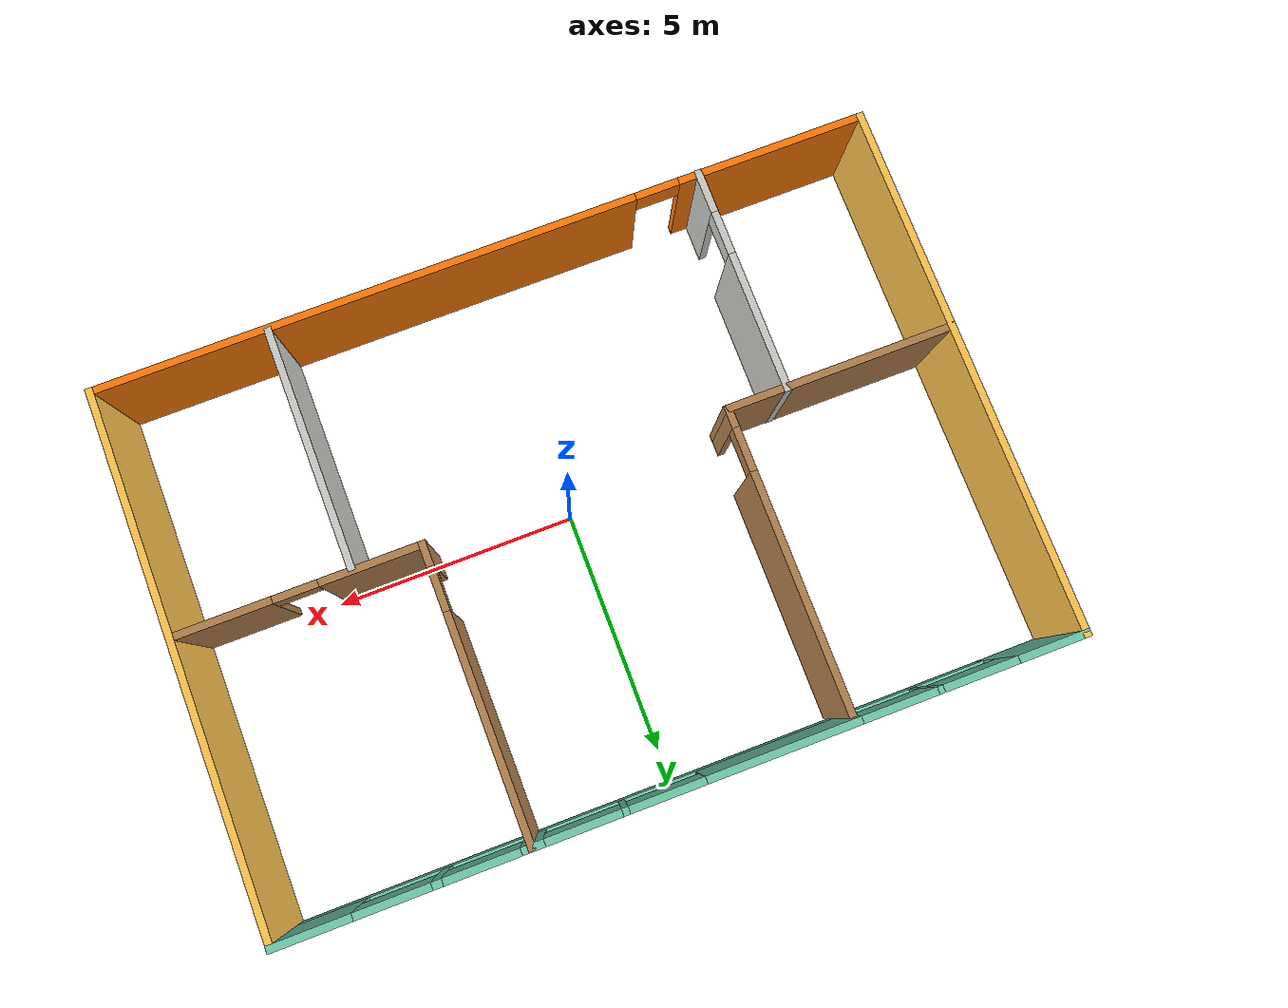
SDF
<?xml version='1.0'?>
<sdf version='1.6'>
  <model name='model'>
    <pose frame=''>-0.11709 0.276106 0 0 -0 0</pose>
    <link name='Wall_15'>
      <pose frame=''>0 5.43196 0 0 -0 0</pose>
      <visual name='Wall_15_Visual_0'>
        <pose frame=''>-7.28003 0 1.25 0 -0 0</pose>
        <geometry>
          <box>
            <size>1.43995 0.15 2.5</size>
          </box>
        </geometry>
        <material>
          <script>
            <uri>file://media/materials/scripts/gazebo.material</uri>
            <name>Gazebo/Grey</name>
          </script>
          <ambient>0.435294 0.796078 0.67451 1</ambient>
        </material>
        <meta>
          <layer>0</layer>
        </meta>
      </visual>
      <collision name='Wall_15_Collision_0'>
        <geometry>
          <box>
            <size>1.43995 0.15 2.5</size>
          </box>
        </geometry>
        <pose frame=''>-7.28003 0 1.25 0 -0 0</pose>
      </collision>
      <visual name='Wall_15_Visual_1'>
        <pose frame=''>0.719973 0 0.25 0 -0 0</pose>
        <geometry>
          <box>
            <size>14.5601 0.15 0.5</size>
          </box>
        </geometry>
        <material>
          <script>
            <uri>file://media/materials/scripts/gazebo.material</uri>
            <name>Gazebo/Grey</name>
          </script>
          <ambient>0.435294 0.796078 0.67451 1</ambient>
        </material>
        <meta>
          <layer>0</layer>
        </meta>
      </visual>
      <collision name='Wall_15_Collision_1'>
        <geometry>
          <box>
            <size>14.5601 0.15 0.5</size>
          </box>
        </geometry>
        <pose frame=''>0.719973 0 0.25 0 -0 0</pose>
      </collision>
      <visual name='Wall_15_Visual_2'>
        <pose frame=''>-5.00551 0 1.5 0 -0 0</pose>
        <geometry>
          <box>
            <size>0.109086 0.15 2</size>
          </box>
        </geometry>
        <material>
          <script>
            <uri>file://media/materials/scripts/gazebo.material</uri>
            <name>Gazebo/Grey</name>
          </script>
          <ambient>0.435294 0.796078 0.67451 1</ambient>
        </material>
        <meta>
          <layer>0</layer>
        </meta>
      </visual>
      <collision name='Wall_15_Collision_2'>
        <geometry>
          <box>
            <size>0.109086 0.15 2</size>
          </box>
        </geometry>
        <pose frame=''>-5.00551 0 1.5 0 -0 0</pose>
      </collision>
      <visual name='Wall_15_Visual_3'>
        <pose frame=''>-1.92311 0 1.5 0 -0 0</pose>
        <geometry>
          <box>
            <size>3.05572 0.15 2</size>
          </box>
        </geometry>
        <material>
          <script>
            <uri>file://media/materials/scripts/gazebo.material</uri>
            <name>Gazebo/Grey</name>
          </script>
          <ambient>0.435294 0.796078 0.67451 1</ambient>
        </material>
        <meta>
          <layer>0</layer>
        </meta>
      </visual>
      <collision name='Wall_15_Collision_3'>
        <geometry>
          <box>
            <size>3.05572 0.15 2</size>
          </box>
        </geometry>
        <pose frame=''>-1.92311 0 1.5 0 -0 0</pose>
      </collision>
      <visual name='Wall_15_Visual_4'>
        <pose frame=''>1.16936 0 1.5 0 -0 0</pose>
        <geometry>
          <box>
            <size>0.129199 0.15 2</size>
          </box>
        </geometry>
        <material>
          <script>
            <uri>file://media/materials/scripts/gazebo.material</uri>
            <name>Gazebo/Grey</name>
          </script>
          <ambient>0.435294 0.796078 0.67451 1</ambient>
        </material>
        <meta>
          <layer>0</layer>
        </meta>
      </visual>
      <collision name='Wall_15_Collision_4'>
        <geometry>
          <box>
            <size>0.129199 0.15 2</size>
          </box>
        </geometry>
        <pose frame=''>1.16936 0 1.5 0 -0 0</pose>
      </collision>
      <visual name='Wall_15_Visual_5'>
        <pose frame=''>2.95647 0 1.5 0 -0 0</pose>
        <geometry>
          <box>
            <size>0.445025 0.15 2</size>
          </box>
        </geometry>
        <material>
          <script>
            <uri>file://media/materials/scripts/gazebo.material</uri>
            <name>Gazebo/Grey</name>
          </script>
          <ambient>0.435294 0.796078 0.67451 1</ambient>
        </material>
        <meta>
          <layer>0</layer>
        </meta>
      </visual>
      <collision name='Wall_15_Collision_5'>
        <geometry>
          <box>
            <size>0.445025 0.15 2</size>
          </box>
        </geometry>
        <pose frame=''>2.95647 0 1.5 0 -0 0</pose>
      </collision>
      <visual name='Wall_15_Visual_6'>
        <pose frame=''>4.78177 0 1.5 0 -0 0</pose>
        <geometry>
          <box>
            <size>0.205588 0.15 2</size>
          </box>
        </geometry>
        <material>
          <script>
            <uri>file://media/materials/scripts/gazebo.material</uri>
            <name>Gazebo/Grey</name>
          </script>
          <ambient>0.435294 0.796078 0.67451 1</ambient>
        </material>
        <meta>
          <layer>0</layer>
        </meta>
      </visual>
      <collision name='Wall_15_Collision_6'>
        <geometry>
          <box>
            <size>0.205588 0.15 2</size>
          </box>
        </geometry>
        <pose frame=''>4.78177 0 1.5 0 -0 0</pose>
      </collision>
      <visual name='Wall_15_Visual_7'>
        <pose frame=''>7.19229 0 1.5 0 -0 0</pose>
        <geometry>
          <box>
            <size>1.61543 0.15 2</size>
          </box>
        </geometry>
        <material>
          <script>
            <uri>file://media/materials/scripts/gazebo.material</uri>
            <name>Gazebo/Grey</name>
          </script>
          <ambient>0.435294 0.796078 0.67451 1</ambient>
        </material>
        <meta>
          <layer>0</layer>
        </meta>
      </visual>
      <collision name='Wall_15_Collision_7'>
        <geometry>
          <box>
            <size>1.61543 0.15 2</size>
          </box>
        </geometry>
        <pose frame=''>7.19229 0 1.5 0 -0 0</pose>
      </collision>
      <visual name='Wall_15_Visual_8'>
        <pose frame=''>-5.81005 0 1.9 0 -0 0</pose>
        <geometry>
          <box>
            <size>1.5 0.15 1.2</size>
          </box>
        </geometry>
        <material>
          <script>
            <uri>file://media/materials/scripts/gazebo.material</uri>
            <name>Gazebo/Grey</name>
          </script>
          <ambient>0.435294 0.796078 0.67451 1</ambient>
        </material>
        <meta>
          <layer>0</layer>
        </meta>
      </visual>
      <collision name='Wall_15_Collision_8'>
        <geometry>
          <box>
            <size>1.5 0.15 1.2</size>
          </box>
        </geometry>
        <pose frame=''>-5.81005 0 1.9 0 -0 0</pose>
      </collision>
      <visual name='Wall_15_Visual_9'>
        <pose frame=''>-4.20097 0 1.9 0 -0 0</pose>
        <geometry>
          <box>
            <size>1.5 0.15 1.2</size>
          </box>
        </geometry>
        <material>
          <script>
            <uri>file://media/materials/scripts/gazebo.material</uri>
            <name>Gazebo/Grey</name>
          </script>
          <ambient>0.435294 0.796078 0.67451 1</ambient>
        </material>
        <meta>
          <layer>0</layer>
        </meta>
      </visual>
      <collision name='Wall_15_Collision_9'>
        <geometry>
          <box>
            <size>1.5 0.15 1.2</size>
          </box>
        </geometry>
        <pose frame=''>-4.20097 0 1.9 0 -0 0</pose>
      </collision>
      <visual name='Wall_15_Visual_10'>
        <pose frame=''>0.354756 0 1.9 0 -0 0</pose>
        <geometry>
          <box>
            <size>1.5 0.15 1.2</size>
          </box>
        </geometry>
        <material>
          <script>
            <uri>file://media/materials/scripts/gazebo.material</uri>
            <name>Gazebo/Grey</name>
          </script>
          <ambient>0.435294 0.796078 0.67451 1</ambient>
        </material>
        <meta>
          <layer>0</layer>
        </meta>
      </visual>
      <collision name='Wall_15_Collision_10'>
        <geometry>
          <box>
            <size>1.5 0.15 1.2</size>
          </box>
        </geometry>
        <pose frame=''>0.354756 0 1.9 0 -0 0</pose>
      </collision>
      <visual name='Wall_15_Visual_11'>
        <pose frame=''>1.98396 0 1.9 0 -0 0</pose>
        <geometry>
          <box>
            <size>1.5 0.15 1.2</size>
          </box>
        </geometry>
        <material>
          <script>
            <uri>file://media/materials/scripts/gazebo.material</uri>
            <name>Gazebo/Grey</name>
          </script>
          <ambient>0.435294 0.796078 0.67451 1</ambient>
        </material>
        <meta>
          <layer>0</layer>
        </meta>
      </visual>
      <collision name='Wall_15_Collision_11'>
        <geometry>
          <box>
            <size>1.5 0.15 1.2</size>
          </box>
        </geometry>
        <pose frame=''>1.98396 0 1.9 0 -0 0</pose>
      </collision>
      <visual name='Wall_15_Visual_12'>
        <pose frame=''>3.92898 0 1.9 0 -0 0</pose>
        <geometry>
          <box>
            <size>1.5 0.15 1.2</size>
          </box>
        </geometry>
        <material>
          <script>
            <uri>file://media/materials/scripts/gazebo.material</uri>
            <name>Gazebo/Grey</name>
          </script>
          <ambient>0.435294 0.796078 0.67451 1</ambient>
        </material>
        <meta>
          <layer>0</layer>
        </meta>
      </visual>
      <collision name='Wall_15_Collision_12'>
        <geometry>
          <box>
            <size>1.5 0.15 1.2</size>
          </box>
        </geometry>
        <pose frame=''>3.92898 0 1.9 0 -0 0</pose>
      </collision>
      <visual name='Wall_15_Visual_13'>
        <pose frame=''>5.63457 0 1.9 0 -0 0</pose>
        <geometry>
          <box>
            <size>1.5 0.15 1.2</size>
          </box>
        </geometry>
        <material>
          <script>
            <uri>file://media/materials/scripts/gazebo.material</uri>
            <name>Gazebo/Grey</name>
          </script>
          <ambient>0.435294 0.796078 0.67451 1</ambient>
        </material>
        <meta>
          <layer>0</layer>
        </meta>
      </visual>
      <collision name='Wall_15_Collision_13'>
        <geometry>
          <box>
            <size>1.5 0.15 1.2</size>
          </box>
        </geometry>
        <pose frame=''>5.63457 0 1.9 0 -0 0</pose>
      </collision>
    </link>
    <link name='Wall_17'>
      <collision name='Wall_17_Collision'>
        <geometry>
          <box>
            <size>11 0.15 2.5</size>
          </box>
        </geometry>
        <pose frame=''>0 0 1.25 0 -0 0</pose>
      </collision>
      <visual name='Wall_17_Visual'>
        <pose frame=''>0 0 1.25 0 -0 0</pose>
        <geometry>
          <box>
            <size>11 0.15 2.5</size>
          </box>
        </geometry>
        <material>
          <script>
            <uri>file://media/materials/scripts/gazebo.material</uri>
            <name>Gazebo/Grey</name>
          </script>
          <ambient>1 0.764706 0.305882 1</ambient>
        </material>
        <meta>
          <layer>0</layer>
        </meta>
      </visual>
      <pose frame=''>7.925 0.006961 0 0 0 -1.5708</pose>
    </link>
    <link name='Wall_18'>
      <pose frame=''>0 -5.41804 0 0 -0 3.14159</pose>
      <visual name='Wall_18_Visual_0'>
        <pose frame=''>-2.40897 0 1.25 0 -0 0</pose>
        <geometry>
          <box>
            <size>11.1821 0.15 2.5</size>
          </box>
        </geometry>
        <material>
          <script>
            <uri>file://media/materials/scripts/gazebo.material</uri>
            <name>Gazebo/Grey</name>
          </script>
          <ambient>0.996078 0.47451 0.0196078 1</ambient>
        </material>
        <meta>
          <layer>0</layer>
        </meta>
      </visual>
      <collision name='Wall_18_Collision_0'>
        <geometry>
          <box>
            <size>11.1821 0.15 2.5</size>
          </box>
        </geometry>
        <pose frame=''>-2.40897 0 1.25 0 -0 0</pose>
      </collision>
      <visual name='Wall_18_Visual_1'>
        <pose frame=''>6.04103 0 1.25 0 -0 0</pose>
        <geometry>
          <box>
            <size>3.91794 0.15 2.5</size>
          </box>
        </geometry>
        <material>
          <script>
            <uri>file://media/materials/scripts/gazebo.material</uri>
            <name>Gazebo/Grey</name>
          </script>
          <ambient>0.996078 0.47451 0.0196078 1</ambient>
        </material>
        <meta>
          <layer>0</layer>
        </meta>
      </visual>
      <collision name='Wall_18_Collision_1'>
        <geometry>
          <box>
            <size>3.91794 0.15 2.5</size>
          </box>
        </geometry>
        <pose frame=''>6.04103 0 1.25 0 -0 0</pose>
      </collision>
      <visual name='Wall_18_Visual_2'>
        <pose frame=''>3.63206 0 2.25 0 -0 0</pose>
        <geometry>
          <box>
            <size>0.9 0.15 0.5</size>
          </box>
        </geometry>
        <material>
          <script>
            <uri>file://media/materials/scripts/gazebo.material</uri>
            <name>Gazebo/Grey</name>
          </script>
          <ambient>0.996078 0.47451 0.0196078 1</ambient>
        </material>
        <meta>
          <layer>0</layer>
        </meta>
      </visual>
      <collision name='Wall_18_Collision_2'>
        <geometry>
          <box>
            <size>0.9 0.15 0.5</size>
          </box>
        </geometry>
        <pose frame=''>3.63206 0 2.25 0 -0 0</pose>
      </collision>
    </link>
    <link name='Wall_19'>
      <collision name='Wall_19_Collision'>
        <geometry>
          <box>
            <size>11 0.15 2.5</size>
          </box>
        </geometry>
        <pose frame=''>0 0 1.25 0 -0 0</pose>
      </collision>
      <visual name='Wall_19_Visual'>
        <pose frame=''>0 0 1.25 0 -0 0</pose>
        <geometry>
          <box>
            <size>11 0.15 2.5</size>
          </box>
        </geometry>
        <material>
          <script>
            <uri>file://media/materials/scripts/gazebo.material</uri>
            <name>Gazebo/Grey</name>
          </script>
          <ambient>1 0.764706 0.305882 1</ambient>
        </material>
        <meta>
          <layer>0</layer>
        </meta>
      </visual>
      <pose frame=''>-7.925 0.006961 0 0 -0 1.5708</pose>
    </link>
    <link name='Wall_21'>
      <pose frame=''>-3.30911 2.20582 0 0 0 -1.5708</pose>
      <visual name='Wall_21_Visual_0'>
        <pose frame=''>-0.682319 0 1.25 0 -0 0</pose>
        <geometry>
          <box>
            <size>4.88536 0.15 2.5</size>
          </box>
        </geometry>
        <material>
          <script>
            <uri>file://media/materials/scripts/gazebo.material</uri>
            <name>Gazebo/Wood</name>
          </script>
          <ambient>0.921569 0.807843 0.615686 1</ambient>
        </material>
        <meta>
          <layer>0</layer>
        </meta>
      </visual>
      <collision name='Wall_21_Collision_0'>
        <geometry>
          <box>
            <size>4.88536 0.15 2.5</size>
          </box>
        </geometry>
        <pose frame=''>-0.682319 0 1.25 0 -0 0</pose>
      </collision>
      <visual name='Wall_21_Visual_1'>
        <pose frame=''>2.89268 0 1.25 0 -0 0</pose>
        <geometry>
          <box>
            <size>0.464637 0.15 2.5</size>
          </box>
        </geometry>
        <material>
          <script>
            <uri>file://media/materials/scripts/gazebo.material</uri>
            <name>Gazebo/Wood</name>
          </script>
          <ambient>0.921569 0.807843 0.615686 1</ambient>
        </material>
        <meta>
          <layer>0</layer>
        </meta>
      </visual>
      <collision name='Wall_21_Collision_1'>
        <geometry>
          <box>
            <size>0.464637 0.15 2.5</size>
          </box>
        </geometry>
        <pose frame=''>2.89268 0 1.25 0 -0 0</pose>
      </collision>
      <visual name='Wall_21_Visual_2'>
        <pose frame=''>2.21036 0 2.25 0 -0 0</pose>
        <geometry>
          <box>
            <size>0.9 0.15 0.5</size>
          </box>
        </geometry>
        <material>
          <script>
            <uri>file://media/materials/scripts/gazebo.material</uri>
            <name>Gazebo/Wood</name>
          </script>
          <ambient>0.921569 0.807843 0.615686 1</ambient>
        </material>
        <meta>
          <layer>0</layer>
        </meta>
      </visual>
      <collision name='Wall_21_Collision_2'>
        <geometry>
          <box>
            <size>0.9 0.15 0.5</size>
          </box>
        </geometry>
        <pose frame=''>2.21036 0 2.25 0 -0 0</pose>
      </collision>
    </link>
    <link name='Wall_22'>
      <collision name='Wall_22_Collision'>
        <geometry>
          <box>
            <size>4.75 0.15 2.5</size>
          </box>
        </geometry>
        <pose frame=''>0 0 1.25 0 -0 0</pose>
      </collision>
      <visual name='Wall_22_Visual'>
        <pose frame=''>0 0 1.25 0 -0 0</pose>
        <geometry>
          <box>
            <size>4.75 0.15 2.5</size>
          </box>
        </geometry>
        <material>
          <script>
            <uri>file://media/materials/scripts/gazebo.material</uri>
            <name>Gazebo/Wood</name>
          </script>
          <ambient>0.921569 0.807843 0.615686 1</ambient>
        </material>
        <meta>
          <layer>0</layer>
        </meta>
      </visual>
      <pose frame=''>-5.60911 -0.844175 0 0 -0 3.14159</pose>
    </link>
    <link name='Wall_25'>
      <pose frame=''>-4.5119 -3.13196 0 0 0 -1.5708</pose>
      <visual name='Wall_25_Visual_0'>
        <pose frame=''>-0.91009 0 1.25 0 -0 0</pose>
        <geometry>
          <box>
            <size>2.92982 0.15 2.5</size>
          </box>
        </geometry>
        <material>
          <script>
            <uri>file://media/materials/scripts/gazebo.material</uri>
            <name>Gazebo/CeilingTiled</name>
          </script>
          <ambient>0.921569 0.807843 0.615686 1</ambient>
        </material>
        <meta>
          <layer>0</layer>
        </meta>
      </visual>
      <collision name='Wall_25_Collision_0'>
        <geometry>
          <box>
            <size>2.92982 0.15 2.5</size>
          </box>
        </geometry>
        <pose frame=''>-0.91009 0 1.25 0 -0 0</pose>
      </collision>
      <visual name='Wall_25_Visual_1'>
        <pose frame=''>1.91491 0 1.25 0 -0 0</pose>
        <geometry>
          <box>
            <size>0.92018 0.15 2.5</size>
          </box>
        </geometry>
        <material>
          <script>
            <uri>file://media/materials/scripts/gazebo.material</uri>
            <name>Gazebo/CeilingTiled</name>
          </script>
          <ambient>0.921569 0.807843 0.615686 1</ambient>
        </material>
        <meta>
          <layer>0</layer>
        </meta>
      </visual>
      <collision name='Wall_25_Collision_1'>
        <geometry>
          <box>
            <size>0.92018 0.15 2.5</size>
          </box>
        </geometry>
        <pose frame=''>1.91491 0 1.25 0 -0 0</pose>
      </collision>
      <visual name='Wall_25_Visual_2'>
        <pose frame=''>1.00482 0 2.25 0 -0 0</pose>
        <geometry>
          <box>
            <size>0.9 0.15 0.5</size>
          </box>
        </geometry>
        <material>
          <script>
            <uri>file://media/materials/scripts/gazebo.material</uri>
            <name>Gazebo/CeilingTiled</name>
          </script>
          <ambient>0.921569 0.807843 0.615686 1</ambient>
        </material>
        <meta>
          <layer>0</layer>
        </meta>
      </visual>
      <collision name='Wall_25_Collision_2'>
        <geometry>
          <box>
            <size>0.9 0.15 0.5</size>
          </box>
        </geometry>
        <pose frame=''>1.00482 0 2.25 0 -0 0</pose>
      </collision>
    </link>
    <link name='Wall_27'>
      <pose frame=''>2.98242 2.4883 0 0 0 -1.5708</pose>
      <visual name='Wall_27_Visual_0'>
        <pose frame=''>-0.705785 0 1.25 0 -0 0</pose>
        <geometry>
          <box>
            <size>4.58843 0.15 2.5</size>
          </box>
        </geometry>
        <material>
          <script>
            <uri>file://media/materials/scripts/gazebo.material</uri>
            <name>Gazebo/Wood</name>
          </script>
          <ambient>0.921569 0.807843 0.615686 1</ambient>
        </material>
        <meta>
          <layer>0</layer>
        </meta>
      </visual>
      <collision name='Wall_27_Collision_0'>
        <geometry>
          <box>
            <size>4.58843 0.15 2.5</size>
          </box>
        </geometry>
        <pose frame=''>-0.705785 0 1.25 0 -0 0</pose>
      </collision>
      <visual name='Wall_27_Visual_1'>
        <pose frame=''>2.74422 0 1.25 0 -0 0</pose>
        <geometry>
          <box>
            <size>0.511571 0.15 2.5</size>
          </box>
        </geometry>
        <material>
          <script>
            <uri>file://media/materials/scripts/gazebo.material</uri>
            <name>Gazebo/Wood</name>
          </script>
          <ambient>0.921569 0.807843 0.615686 1</ambient>
        </material>
        <meta>
          <layer>0</layer>
        </meta>
      </visual>
      <collision name='Wall_27_Collision_1'>
        <geometry>
          <box>
            <size>0.511571 0.15 2.5</size>
          </box>
        </geometry>
        <pose frame=''>2.74422 0 1.25 0 -0 0</pose>
      </collision>
      <visual name='Wall_27_Visual_2'>
        <pose frame=''>2.03843 0 2.25 0 -0 0</pose>
        <geometry>
          <box>
            <size>0.9 0.15 0.5</size>
          </box>
        </geometry>
        <material>
          <script>
            <uri>file://media/materials/scripts/gazebo.material</uri>
            <name>Gazebo/Wood</name>
          </script>
          <ambient>0.921569 0.807843 0.615686 1</ambient>
        </material>
        <meta>
          <layer>0</layer>
        </meta>
      </visual>
      <collision name='Wall_27_Collision_2'>
        <geometry>
          <box>
            <size>0.9 0.15 0.5</size>
          </box>
        </geometry>
        <pose frame=''>2.03843 0 2.25 0 -0 0</pose>
      </collision>
    </link>
    <link name='Wall_28'>
      <pose frame=''>5.40742 -0.436697 0 0 -0 0</pose>
      <visual name='Wall_28_Visual_0'>
        <pose frame=''>-1.43556 0 1.25 0 -0 0</pose>
        <geometry>
          <box>
            <size>2.12887 0.15 2.5</size>
          </box>
        </geometry>
        <material>
          <script>
            <uri>file://media/materials/scripts/gazebo.material</uri>
            <name>Gazebo/Wood</name>
          </script>
          <ambient>0.921569 0.807843 0.615686 1</ambient>
        </material>
        <meta>
          <layer>0</layer>
        </meta>
      </visual>
      <collision name='Wall_28_Collision_0'>
        <geometry>
          <box>
            <size>2.12887 0.15 2.5</size>
          </box>
        </geometry>
        <pose frame=''>-1.43556 0 1.25 0 -0 0</pose>
      </collision>
      <visual name='Wall_28_Visual_1'>
        <pose frame=''>1.51444 0 1.25 0 -0 0</pose>
        <geometry>
          <box>
            <size>1.97113 0.15 2.5</size>
          </box>
        </geometry>
        <material>
          <script>
            <uri>file://media/materials/scripts/gazebo.material</uri>
            <name>Gazebo/Wood</name>
          </script>
          <ambient>0.921569 0.807843 0.615686 1</ambient>
        </material>
        <meta>
          <layer>0</layer>
        </meta>
      </visual>
      <collision name='Wall_28_Collision_1'>
        <geometry>
          <box>
            <size>1.97113 0.15 2.5</size>
          </box>
        </geometry>
        <pose frame=''>1.51444 0 1.25 0 -0 0</pose>
      </collision>
      <visual name='Wall_28_Visual_2'>
        <pose frame=''>0.078875 0 2.25 0 -0 0</pose>
        <geometry>
          <box>
            <size>0.9 0.15 0.5</size>
          </box>
        </geometry>
        <material>
          <script>
            <uri>file://media/materials/scripts/gazebo.material</uri>
            <name>Gazebo/Wood</name>
          </script>
          <ambient>0.921569 0.807843 0.615686 1</ambient>
        </material>
        <meta>
          <layer>0</layer>
        </meta>
      </visual>
      <collision name='Wall_28_Collision_2'>
        <geometry>
          <box>
            <size>0.9 0.15 0.5</size>
          </box>
        </geometry>
        <pose frame=''>0.078875 0 2.25 0 -0 0</pose>
      </collision>
    </link>
    <link name='Wall_30'>
      <collision name='Wall_30_Collision'>
        <geometry>
          <box>
            <size>5 0.15 2.5</size>
          </box>
        </geometry>
        <pose frame=''>0 0 1.25 0 -0 0</pose>
      </collision>
      <visual name='Wall_30_Visual'>
        <pose frame=''>0 0 1.25 0 -0 0</pose>
        <geometry>
          <box>
            <size>5 0.15 2.5</size>
          </box>
        </geometry>
        <material>
          <script>
            <uri>file://media/materials/scripts/gazebo.material</uri>
            <name>Gazebo/CeilingTiled</name>
          </script>
          <ambient>0.921569 0.807843 0.615686 1</ambient>
        </material>
        <meta>
          <layer>0</layer>
        </meta>
      </visual>
      <pose frame=''>4.37026 -2.93313 0 0 0 -1.5708</pose>
    </link>
    <static>1</static>
  </model>
</sdf>
